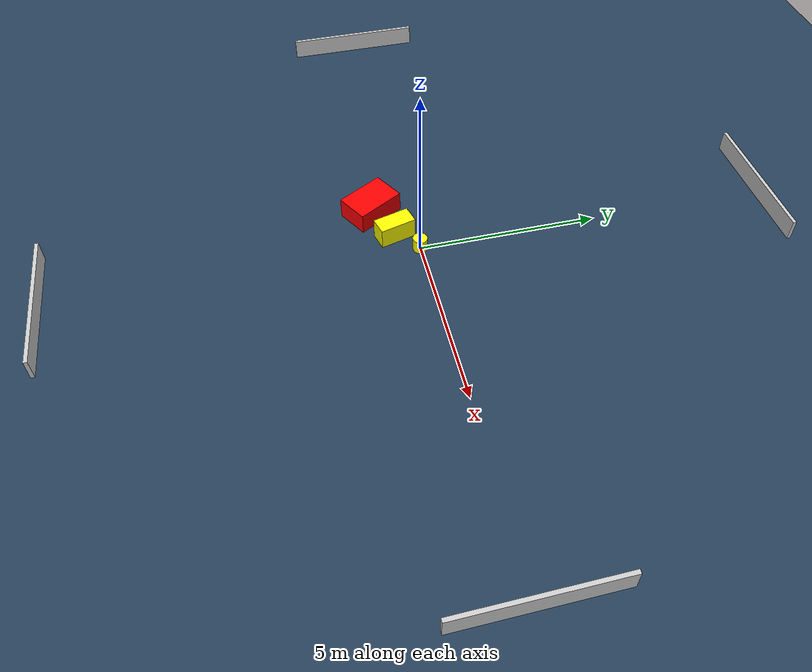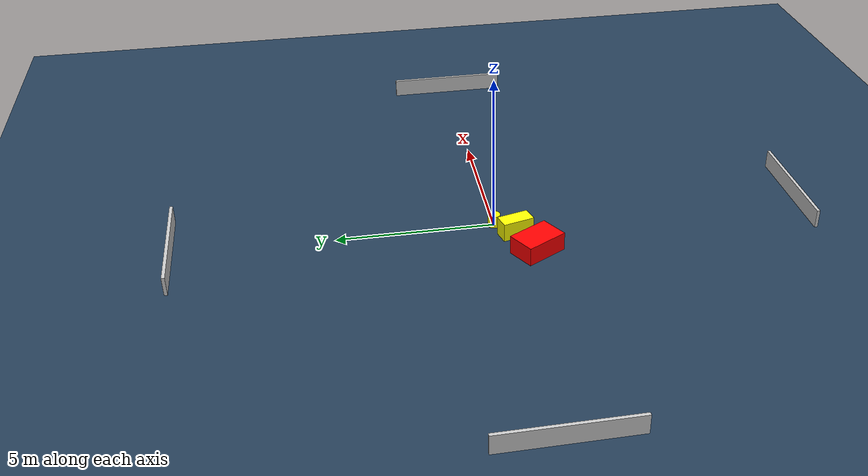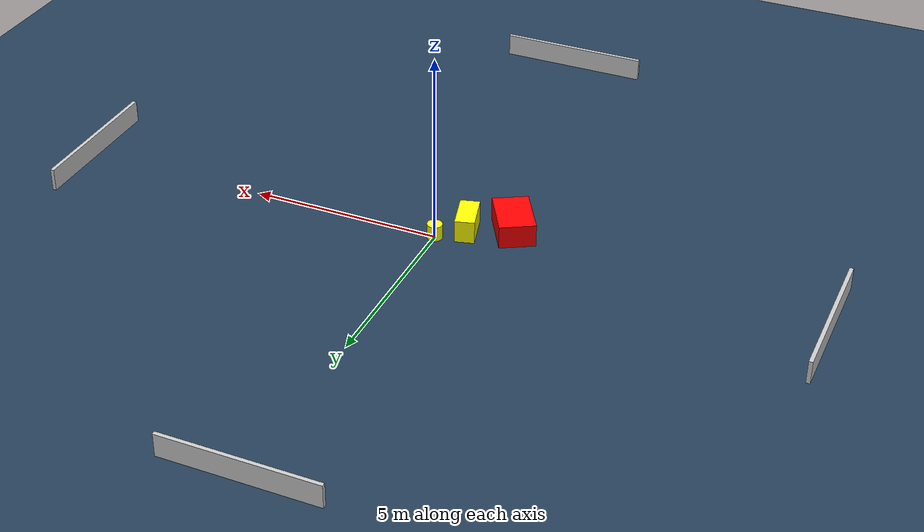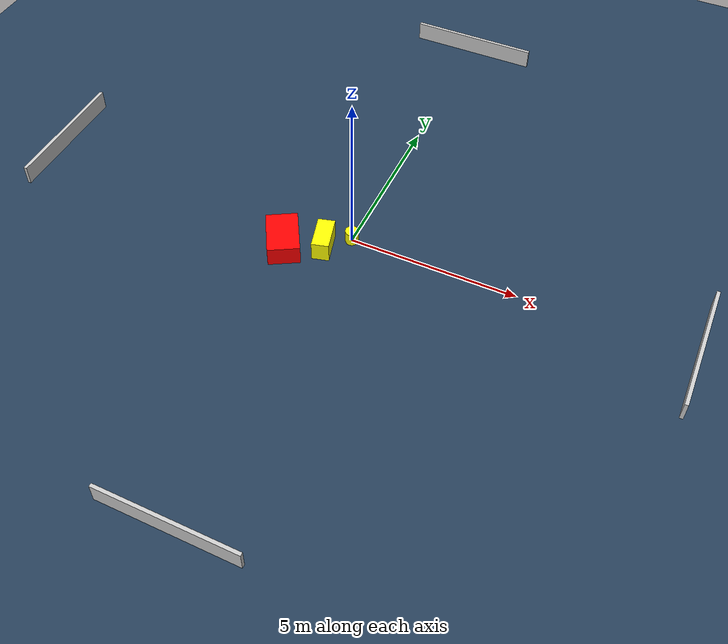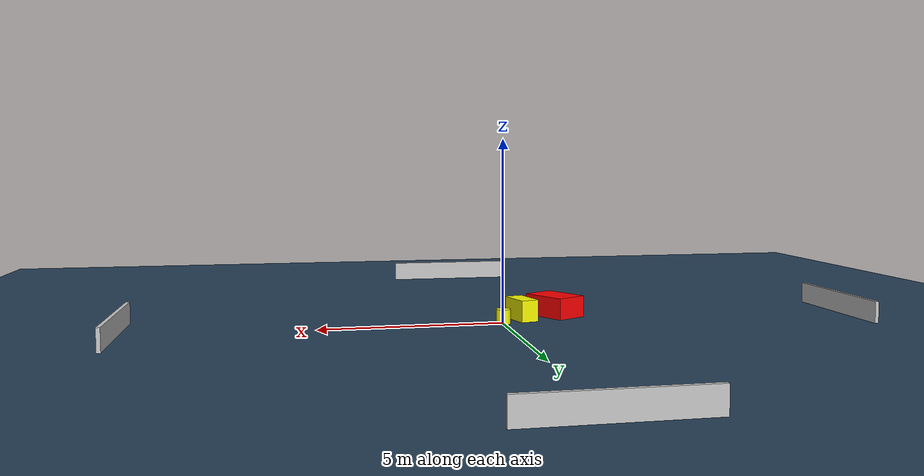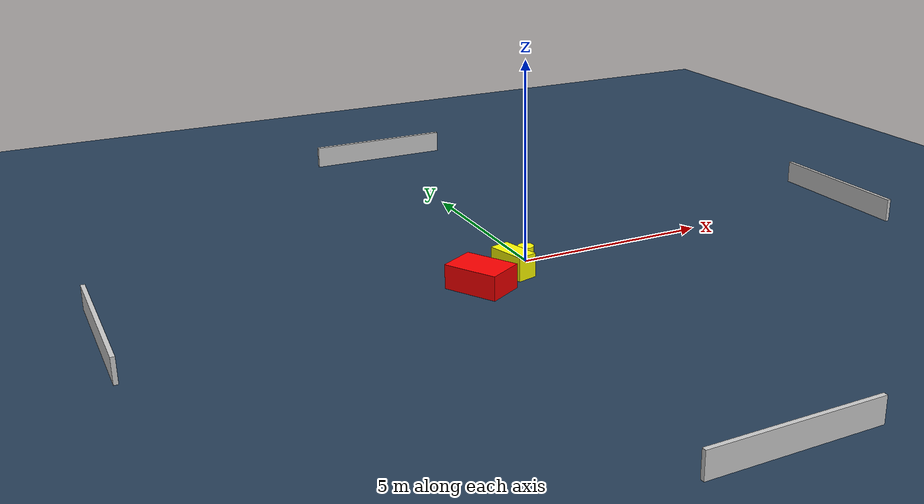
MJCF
<?xml version="1.0" ?>
<mujoco model="generated_environment">
  <option timestep="0.01" integrator="RK4" cone="elliptic"/>
  <default>
    <geom density="1"/>
  </default>
  <asset>
    <texture builtin="gradient" height="3072" name="skybox" rgb1="0.3 0.5 0.7" rgb2="0 0 0" type="skybox" width="512"/>
    <texture builtin="checker" height="300" name="groundplane" rgb1="0.2 0.3 0.4" rgb2="0.1 0.2 0.3" type="2d" width="300"/>
    <material name="groundplane" reflectance="0.2" texrepeat="5 5" texture="groundplane"/>
  </asset>
  <worldbody>
    <light dir="0 0 -1" directional="true" pos="0 0 1.5"/>
    <geom condim="3" friction="0.5 0.005 0.001" material="groundplane" name="floor" pos="0 0 0" size="0 0 0.05" type="plane"/>
    <body name="walls">
      <geom name="wall_1" condim="4" pos="-10.0 0.0 0.3" rgba="0.800000011920929 0.800000011920929 0.800000011920929 1.0" size="0.05 2.0 0.3" type="box"/>
      <geom name="wall_2" condim="4" pos="10.0 0.0 0.3" rgba="0.800000011920929 0.800000011920929 0.800000011920929 1.0" size="0.05 2.0 0.3" type="box"/>
      <geom name="wall_3" condim="4" pos="0.0 -10.0 0.3" rgba="0.800000011920929 0.800000011920929 0.800000011920929 1.0" size="2.0 0.05 0.3" type="box"/>
      <geom name="wall_4" condim="4" pos="0.0 10.0 0.3" rgba="0.800000011920929 0.800000011920929 0.800000011920929 1.0" size="2.0 0.05 0.3" type="box"/>
    </body>
    <body name="robot">
      <joint name="joint_x" type="slide" pos="0 0 0" axis="1 0 0"/>
      <joint name="joint_y" type="slide" pos="0 0 0" axis="0 1 0"/>
      <geom name="robot" type="cylinder" pos="0.0 0.0 0.2" size="0.2 0.2 0.0" mass="5.0" friction="1.0 0.005 0.0001" condim="4" rgba="1.0 1.0 0.0 1.0"/>
    </body>
    <body name="obstacle_1_movable">
      <geom name="obstacle_1_movable" condim="4" pos="-0.6415843032487651 -0.5671254791302782 0.3" euler="0 0 14.878134452358553" friction="0.0 0.005 0.001" rgba="1.0 1.0 0.0 1.0" size="0.25342500607873697 0.5091816724061384 0.3" type="box" mass="0.1"/>
      <joint type="free"/>
    </body>
    <body name="obstacle_2_static">
      <geom name="obstacle_2_static" condim="4" pos="-1.7133506385058663 -1.025745369827869 0.3" euler="0 0 29.807595951428915" friction="0.0 0.005 0.001" rgba="1.0 0.0 0.0 1.0" size="0.4678328499913973 0.6942313184716318 0.3" type="box"/>
    </body>
  </worldbody>
  <actuator>
    <motor name="actuator_x" joint="joint_x" gear="1" ctrlrange="-1 1"/>
    <motor name="actuator_y" joint="joint_y" gear="1" ctrlrange="-1 1"/>
  </actuator>
</mujoco>
